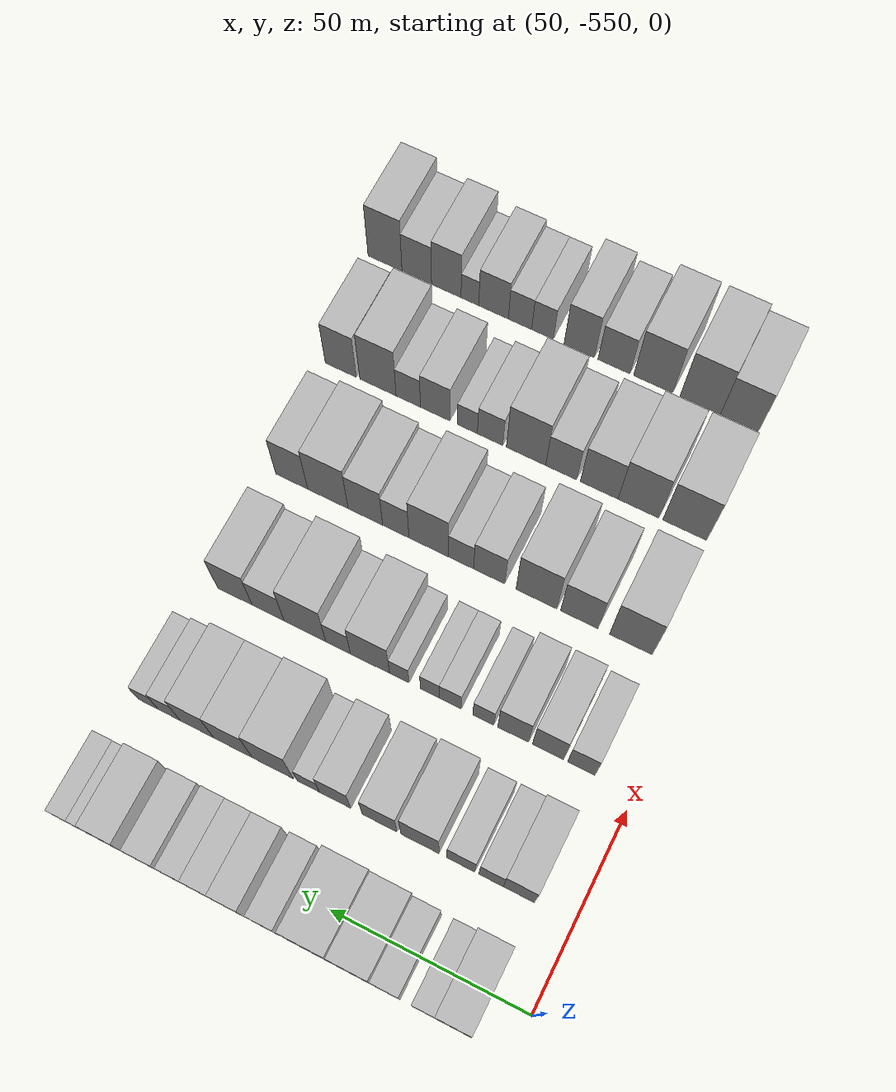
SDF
<sdf version="1.6">
 <world name="default">
  <model name="building_1">
   <static>1</static>
   <pose>50.0000 -535.6946 0 0.000000 0.000000 0.000000</pose>
   <link name="link">
    <pose>0 0 10.50 0 0 0</pose>
    <collision name="collision"><geometry><box><size>20.0000 8.6108 21.0000</size></box></geometry></collision>
    <visual name="visual">
     <cast_shadows>0</cast_shadows>
     <geometry><box><size>20.0000 8.6108 21.0000</size></box></geometry>
     <material>
      <script>
       <uri>model://HANNAS_wall/materials/scripts</uri>
       <uri>model://HANNAS_wall/materials/textures</uri>
       <name>vrc/HANNAS_wall</name>
      </script>
     </material>
    </visual>
   </link>
  </model>
  <model name="building_2">
   <static>1</static>
   <pose>50.0000 -528.5945 0 0.000000 0.000000 0.000000</pose>
   <link name="link">
    <pose>0 0 6.00 0 0 0</pose>
    <collision name="collision"><geometry><box><size>20.0000 5.5894 12.0000</size></box></geometry></collision>
    <visual name="visual">
     <cast_shadows>0</cast_shadows>
     <geometry><box><size>20.0000 5.5894 12.0000</size></box></geometry>
     <material>
      <script>
       <uri>model://HANNAS_wall/materials/scripts</uri>
       <uri>model://HANNAS_wall/materials/textures</uri>
       <name>vrc/HANNAS_wall</name>
      </script>
     </material>
    </visual>
   </link>
  </model>
  <model name="building_3">
   <static>1</static>
   <pose>50.0000 -519.3449 0 0.000000 0.000000 0.000000</pose>
   <link name="link">
    <pose>0 0 7.50 0 0 0</pose>
    <collision name="collision"><geometry><box><size>20.0000 6.9099 15.0000</size></box></geometry></collision>
    <visual name="visual">
     <cast_shadows>0</cast_shadows>
     <geometry><box><size>20.0000 6.9099 15.0000</size></box></geometry>
     <material>
      <script>
       <uri>model://HANNAS_wall/materials/scripts</uri>
       <uri>model://HANNAS_wall/materials/textures</uri>
       <name>vrc/HANNAS_wall</name>
      </script>
     </material>
    </visual>
   </link>
  </model>
  <model name="building_4">
   <static>1</static>
   <pose>50.0000 -510.8784 0 0.000000 0.000000 0.000000</pose>
   <link name="link">
    <pose>0 0 10.50 0 0 0</pose>
    <collision name="collision"><geometry><box><size>20.0000 10.0230 21.0000</size></box></geometry></collision>
    <visual name="visual">
     <cast_shadows>0</cast_shadows>
     <geometry><box><size>20.0000 10.0230 21.0000</size></box></geometry>
     <material>
      <script>
       <uri>model://HANNAS_wall/materials/scripts</uri>
       <uri>model://HANNAS_wall/materials/textures</uri>
       <name>vrc/HANNAS_wall</name>
      </script>
     </material>
    </visual>
   </link>
  </model>
  <model name="building_5">
   <static>1</static>
   <pose>50.0000 -500.2681 0 0.000000 0.000000 0.000000</pose>
   <link name="link">
    <pose>0 0 12.00 0 0 0</pose>
    <collision name="collision"><geometry><box><size>20.0000 11.1976 24.0000</size></box></geometry></collision>
    <visual name="visual">
     <cast_shadows>0</cast_shadows>
     <geometry><box><size>20.0000 11.1976 24.0000</size></box></geometry>
     <material>
      <script>
       <uri>model://HANNAS_wall/materials/scripts</uri>
       <uri>model://HANNAS_wall/materials/textures</uri>
       <name>vrc/HANNAS_wall</name>
      </script>
     </material>
    </visual>
   </link>
  </model>
  <model name="building_6">
   <static>1</static>
   <pose>50.0000 -489.2908 0 0.000000 0.000000 0.000000</pose>
   <link name="link">
    <pose>0 0 7.50 0 0 0</pose>
    <collision name="collision"><geometry><box><size>20.0000 6.7569 15.0000</size></box></geometry></collision>
    <visual name="visual">
     <cast_shadows>0</cast_shadows>
     <geometry><box><size>20.0000 6.7569 15.0000</size></box></geometry>
     <material>
      <script>
       <uri>model://HANNAS_wall/materials/scripts</uri>
       <uri>model://HANNAS_wall/materials/textures</uri>
       <name>vrc/HANNAS_wall</name>
      </script>
     </material>
    </visual>
   </link>
  </model>
  <model name="building_7">
   <static>1</static>
   <pose>50.0000 -480.1677 0 0.000000 0.000000 0.000000</pose>
   <link name="link">
    <pose>0 0 7.50 0 0 0</pose>
    <collision name="collision"><geometry><box><size>20.0000 7.4892 15.0000</size></box></geometry></collision>
    <visual name="visual">
     <cast_shadows>0</cast_shadows>
     <geometry><box><size>20.0000 7.4892 15.0000</size></box></geometry>
     <material>
      <script>
       <uri>model://HANNAS_wall/materials/scripts</uri>
       <uri>model://HANNAS_wall/materials/textures</uri>
       <name>vrc/HANNAS_wall</name>
      </script>
     </material>
    </visual>
   </link>
  </model>
  <model name="building_8">
   <static>1</static>
   <pose>50.0000 -473.1061 0 0.000000 0.000000 0.000000</pose>
   <link name="link">
    <pose>0 0 7.50 0 0 0</pose>
    <collision name="collision"><geometry><box><size>20.0000 6.6341 15.0000</size></box></geometry></collision>
    <visual name="visual">
     <cast_shadows>0</cast_shadows>
     <geometry><box><size>20.0000 6.6341 15.0000</size></box></geometry>
     <material>
      <script>
       <uri>model://HANNAS_wall/materials/scripts</uri>
       <uri>model://HANNAS_wall/materials/textures</uri>
       <name>vrc/HANNAS_wall</name>
      </script>
     </material>
    </visual>
   </link>
  </model>
  <model name="building_9">
   <static>1</static>
   <pose>50.0000 -466.7737 0 0.000000 0.000000 0.000000</pose>
   <link name="link">
    <pose>0 0 7.50 0 0 0</pose>
    <collision name="collision"><geometry><box><size>20.0000 6.0306 15.0000</size></box></geometry></collision>
    <visual name="visual">
     <cast_shadows>0</cast_shadows>
     <geometry><box><size>20.0000 6.0306 15.0000</size></box></geometry>
     <material>
      <script>
       <uri>model://HANNAS_wall/materials/scripts</uri>
       <uri>model://HANNAS_wall/materials/textures</uri>
       <name>vrc/HANNAS_wall</name>
      </script>
     </material>
    </visual>
   </link>
  </model>
  <model name="building_10">
   <static>1</static>
   <pose>50.0000 -459.0186 0 0.000000 0.000000 0.000000</pose>
   <link name="link">
    <pose>0 0 7.50 0 0 0</pose>
    <collision name="collision"><geometry><box><size>20.0000 7.4796 15.0000</size></box></geometry></collision>
    <visual name="visual">
     <cast_shadows>0</cast_shadows>
     <geometry><box><size>20.0000 7.4796 15.0000</size></box></geometry>
     <material>
      <script>
       <uri>model://HANNAS_wall/materials/scripts</uri>
       <uri>model://HANNAS_wall/materials/textures</uri>
       <name>vrc/HANNAS_wall</name>
      </script>
     </material>
    </visual>
   </link>
  </model>
  <model name="building_11">
   <static>1</static>
   <pose>50.0000 -449.9481 0 0.000000 0.000000 0.000000</pose>
   <link name="link">
    <pose>0 0 10.50 0 0 0</pose>
    <collision name="collision"><geometry><box><size>20.0000 8.6615 21.0000</size></box></geometry></collision>
    <visual name="visual">
     <cast_shadows>0</cast_shadows>
     <geometry><box><size>20.0000 8.6615 21.0000</size></box></geometry>
     <material>
      <script>
       <uri>model://HANNAS_wall/materials/scripts</uri>
       <uri>model://HANNAS_wall/materials/textures</uri>
       <name>vrc/HANNAS_wall</name>
      </script>
     </material>
    </visual>
   </link>
  </model>
  <model name="building_12">
   <static>1</static>
   <pose>50.0000 -443.0723 0 0.000000 0.000000 0.000000</pose>
   <link name="link">
    <pose>0 0 6.00 0 0 0</pose>
    <collision name="collision"><geometry><box><size>20.0000 5.0902 12.0000</size></box></geometry></collision>
    <visual name="visual">
     <cast_shadows>0</cast_shadows>
     <geometry><box><size>20.0000 5.0902 12.0000</size></box></geometry>
     <material>
      <script>
       <uri>model://HANNAS_wall/materials/scripts</uri>
       <uri>model://HANNAS_wall/materials/textures</uri>
       <name>vrc/HANNAS_wall</name>
      </script>
     </material>
    </visual>
   </link>
  </model>
  <model name="building_13">
   <static>1</static>
   <pose>50.0000 -437.9258 0 0.000000 0.000000 0.000000</pose>
   <link name="link">
    <pose>0 0 6.00 0 0 0</pose>
    <collision name="collision"><geometry><box><size>20.0000 5.2027 12.0000</size></box></geometry></collision>
    <visual name="visual">
     <cast_shadows>0</cast_shadows>
     <geometry><box><size>20.0000 5.2027 12.0000</size></box></geometry>
     <material>
      <script>
       <uri>model://HANNAS_wall/materials/scripts</uri>
       <uri>model://HANNAS_wall/materials/textures</uri>
       <name>vrc/HANNAS_wall</name>
      </script>
     </material>
    </visual>
   </link>
  </model>
  <model name="building_122">
   <static>1</static>
   <pose>82.0000 -536.1418 0 0.000000 0.000000 0.000000</pose>
   <link name="link">
    <pose>0 0 9.00 0 0 0</pose>
    <collision name="collision"><geometry><box><size>20.0000 7.7164 18.0000</size></box></geometry></collision>
    <visual name="visual">
     <cast_shadows>0</cast_shadows>
     <geometry><box><size>20.0000 7.7164 18.0000</size></box></geometry>
     <material>
      <script>
       <uri>model://HANNAS_wall/materials/scripts</uri>
       <uri>model://HANNAS_wall/materials/textures</uri>
       <name>vrc/HANNAS_wall</name>
      </script>
     </material>
    </visual>
   </link>
  </model>
  <model name="building_123">
   <static>1</static>
   <pose>82.0000 -529.2251 0 0.000000 0.000000 0.000000</pose>
   <link name="link">
    <pose>0 0 7.50 0 0 0</pose>
    <collision name="collision"><geometry><box><size>20.0000 6.1171 15.0000</size></box></geometry></collision>
    <visual name="visual">
     <cast_shadows>0</cast_shadows>
     <geometry><box><size>20.0000 6.1171 15.0000</size></box></geometry>
     <material>
      <script>
       <uri>model://HANNAS_wall/materials/scripts</uri>
       <uri>model://HANNAS_wall/materials/textures</uri>
       <name>vrc/HANNAS_wall</name>
      </script>
     </material>
    </visual>
   </link>
  </model>
  <model name="building_124">
   <static>1</static>
   <pose>82.0000 -521.6427 0 0.000000 0.000000 0.000000</pose>
   <link name="link">
    <pose>0 0 7.50 0 0 0</pose>
    <collision name="collision"><geometry><box><size>20.0000 7.0477 15.0000</size></box></geometry></collision>
    <visual name="visual">
     <cast_shadows>0</cast_shadows>
     <geometry><box><size>20.0000 7.0477 15.0000</size></box></geometry>
     <material>
      <script>
       <uri>model://HANNAS_wall/materials/scripts</uri>
       <uri>model://HANNAS_wall/materials/textures</uri>
       <name>vrc/HANNAS_wall</name>
      </script>
     </material>
    </visual>
   </link>
  </model>
  <model name="building_125">
   <static>1</static>
   <pose>82.0000 -511.2920 0 0.000000 0.000000 0.000000</pose>
   <link name="link">
    <pose>0 0 10.50 0 0 0</pose>
    <collision name="collision"><geometry><box><size>20.0000 9.6538 21.0000</size></box></geometry></collision>
    <visual name="visual">
     <cast_shadows>0</cast_shadows>
     <geometry><box><size>20.0000 9.6538 21.0000</size></box></geometry>
     <material>
      <script>
       <uri>model://HANNAS_wall/materials/scripts</uri>
       <uri>model://HANNAS_wall/materials/textures</uri>
       <name>vrc/HANNAS_wall</name>
      </script>
     </material>
    </visual>
   </link>
  </model>
  <model name="building_126">
   <static>1</static>
   <pose>82.0000 -501.0343 0 0.000000 0.000000 0.000000</pose>
   <link name="link">
    <pose>0 0 9.00 0 0 0</pose>
    <collision name="collision"><geometry><box><size>20.0000 8.8615 18.0000</size></box></geometry></collision>
    <visual name="visual">
     <cast_shadows>0</cast_shadows>
     <geometry><box><size>20.0000 8.8615 18.0000</size></box></geometry>
     <material>
      <script>
       <uri>model://HANNAS_wall/materials/scripts</uri>
       <uri>model://HANNAS_wall/materials/textures</uri>
       <name>vrc/HANNAS_wall</name>
      </script>
     </material>
    </visual>
   </link>
  </model>
  <model name="building_127">
   <static>1</static>
   <pose>82.0000 -489.5662 0 0.000000 0.000000 0.000000</pose>
   <link name="link">
    <pose>0 0 9.00 0 0 0</pose>
    <collision name="collision"><geometry><box><size>20.0000 8.0747 18.0000</size></box></geometry></collision>
    <visual name="visual">
     <cast_shadows>0</cast_shadows>
     <geometry><box><size>20.0000 8.0747 18.0000</size></box></geometry>
     <material>
      <script>
       <uri>model://HANNAS_wall/materials/scripts</uri>
       <uri>model://HANNAS_wall/materials/textures</uri>
       <name>vrc/HANNAS_wall</name>
      </script>
     </material>
    </visual>
   </link>
  </model>
  <model name="building_128">
   <static>1</static>
   <pose>82.0000 -482.6268 0 0.000000 0.000000 0.000000</pose>
   <link name="link">
    <pose>0 0 6.00 0 0 0</pose>
    <collision name="collision"><geometry><box><size>20.0000 5.8041 12.0000</size></box></geometry></collision>
    <visual name="visual">
     <cast_shadows>0</cast_shadows>
     <geometry><box><size>20.0000 5.8041 12.0000</size></box></geometry>
     <material>
      <script>
       <uri>model://HANNAS_wall/materials/scripts</uri>
       <uri>model://HANNAS_wall/materials/textures</uri>
       <name>vrc/HANNAS_wall</name>
      </script>
     </material>
    </visual>
   </link>
  </model>
  <model name="building_129">
   <static>1</static>
   <pose>82.0000 -473.3147 0 0.000000 0.000000 0.000000</pose>
   <link name="link">
    <pose>0 0 12.00 0 0 0</pose>
    <collision name="collision"><geometry><box><size>20.0000 10.8201 24.0000</size></box></geometry></collision>
    <visual name="visual">
     <cast_shadows>0</cast_shadows>
     <geometry><box><size>20.0000 10.8201 24.0000</size></box></geometry>
     <material>
      <script>
       <uri>model://HANNAS_wall/materials/scripts</uri>
       <uri>model://HANNAS_wall/materials/textures</uri>
       <name>vrc/HANNAS_wall</name>
      </script>
     </material>
    </visual>
   </link>
  </model>
  <model name="building_130">
   <static>1</static>
   <pose>82.0000 -462.8361 0 0.000000 0.000000 0.000000</pose>
   <link name="link">
    <pose>0 0 10.50 0 0 0</pose>
    <collision name="collision"><geometry><box><size>20.0000 10.1370 21.0000</size></box></geometry></collision>
    <visual name="visual">
     <cast_shadows>0</cast_shadows>
     <geometry><box><size>20.0000 10.1370 21.0000</size></box></geometry>
     <material>
      <script>
       <uri>model://HANNAS_wall/materials/scripts</uri>
       <uri>model://HANNAS_wall/materials/textures</uri>
       <name>vrc/HANNAS_wall</name>
      </script>
     </material>
    </visual>
   </link>
  </model>
  <model name="building_131">
   <static>1</static>
   <pose>82.0000 -453.2930 0 0.000000 0.000000 0.000000</pose>
   <link name="link">
    <pose>0 0 10.50 0 0 0</pose>
    <collision name="collision"><geometry><box><size>20.0000 8.9493 21.0000</size></box></geometry></collision>
    <visual name="visual">
     <cast_shadows>0</cast_shadows>
     <geometry><box><size>20.0000 8.9493 21.0000</size></box></geometry>
     <material>
      <script>
       <uri>model://HANNAS_wall/materials/scripts</uri>
       <uri>model://HANNAS_wall/materials/textures</uri>
       <name>vrc/HANNAS_wall</name>
      </script>
     </material>
    </visual>
   </link>
  </model>
  <model name="building_132">
   <static>1</static>
   <pose>82.0000 -445.8079 0 0.000000 0.000000 0.000000</pose>
   <link name="link">
    <pose>0 0 7.50 0 0 0</pose>
    <collision name="collision"><geometry><box><size>20.0000 6.0209 15.0000</size></box></geometry></collision>
    <visual name="visual">
     <cast_shadows>0</cast_shadows>
     <geometry><box><size>20.0000 6.0209 15.0000</size></box></geometry>
     <material>
      <script>
       <uri>model://HANNAS_wall/materials/scripts</uri>
       <uri>model://HANNAS_wall/materials/textures</uri>
       <name>vrc/HANNAS_wall</name>
      </script>
     </material>
    </visual>
   </link>
  </model>
  <model name="building_133">
   <static>1</static>
   <pose>82.0000 -440.1030 0 0.000000 0.000000 0.000000</pose>
   <link name="link">
    <pose>0 0 6.00 0 0 0</pose>
    <collision name="collision"><geometry><box><size>20.0000 5.3889 12.0000</size></box></geometry></collision>
    <visual name="visual">
     <cast_shadows>0</cast_shadows>
     <geometry><box><size>20.0000 5.3889 12.0000</size></box></geometry>
     <material>
      <script>
       <uri>model://HANNAS_wall/materials/scripts</uri>
       <uri>model://HANNAS_wall/materials/textures</uri>
       <name>vrc/HANNAS_wall</name>
      </script>
     </material>
    </visual>
   </link>
  </model>
  <model name="building_244">
   <static>1</static>
   <pose>114.0000 -536.5193 0 0.000000 0.000000 0.000000</pose>
   <link name="link">
    <pose>0 0 7.50 0 0 0</pose>
    <collision name="collision"><geometry><box><size>20.0000 6.9614 15.0000</size></box></geometry></collision>
    <visual name="visual">
     <cast_shadows>0</cast_shadows>
     <geometry><box><size>20.0000 6.9614 15.0000</size></box></geometry>
     <material>
      <script>
       <uri>model://HANNAS_wall/materials/scripts</uri>
       <uri>model://HANNAS_wall/materials/textures</uri>
       <name>vrc/HANNAS_wall</name>
      </script>
     </material>
    </visual>
   </link>
  </model>
  <model name="building_245">
   <static>1</static>
   <pose>114.0000 -528.0449 0 0.000000 0.000000 0.000000</pose>
   <link name="link">
    <pose>0 0 9.00 0 0 0</pose>
    <collision name="collision"><geometry><box><size>20.0000 7.9874 18.0000</size></box></geometry></collision>
    <visual name="visual">
     <cast_shadows>0</cast_shadows>
     <geometry><box><size>20.0000 7.9874 18.0000</size></box></geometry>
     <material>
      <script>
       <uri>model://HANNAS_wall/materials/scripts</uri>
       <uri>model://HANNAS_wall/materials/textures</uri>
       <name>vrc/HANNAS_wall</name>
      </script>
     </material>
    </visual>
   </link>
  </model>
  <model name="building_246">
   <static>1</static>
   <pose>114.0000 -519.0947 0 0.000000 0.000000 0.000000</pose>
   <link name="link">
    <pose>0 0 9.00 0 0 0</pose>
    <collision name="collision"><geometry><box><size>20.0000 7.9131 18.0000</size></box></geometry></collision>
    <visual name="visual">
     <cast_shadows>0</cast_shadows>
     <geometry><box><size>20.0000 7.9131 18.0000</size></box></geometry>
     <material>
      <script>
       <uri>model://HANNAS_wall/materials/scripts</uri>
       <uri>model://HANNAS_wall/materials/textures</uri>
       <name>vrc/HANNAS_wall</name>
      </script>
     </material>
    </visual>
   </link>
  </model>
  <model name="building_247">
   <static>1</static>
   <pose>114.0000 -511.4065 0 0.000000 0.000000 0.000000</pose>
   <link name="link">
    <pose>0 0 6.00 0 0 0</pose>
    <collision name="collision"><geometry><box><size>20.0000 5.4634 12.0000</size></box></geometry></collision>
    <visual name="visual">
     <cast_shadows>0</cast_shadows>
     <geometry><box><size>20.0000 5.4634 12.0000</size></box></geometry>
     <material>
      <script>
       <uri>model://HANNAS_wall/materials/scripts</uri>
       <uri>model://HANNAS_wall/materials/textures</uri>
       <name>vrc/HANNAS_wall</name>
      </script>
     </material>
    </visual>
   </link>
  </model>
  <model name="building_248">
   <static>1</static>
   <pose>114.0000 -502.7991 0 0.000000 0.000000 0.000000</pose>
   <link name="link">
    <pose>0 0 6.00 0 0 0</pose>
    <collision name="collision"><geometry><box><size>20.0000 5.7513 12.0000</size></box></geometry></collision>
    <visual name="visual">
     <cast_shadows>0</cast_shadows>
     <geometry><box><size>20.0000 5.7513 12.0000</size></box></geometry>
     <material>
      <script>
       <uri>model://HANNAS_wall/materials/scripts</uri>
       <uri>model://HANNAS_wall/materials/textures</uri>
       <name>vrc/HANNAS_wall</name>
      </script>
     </material>
    </visual>
   </link>
  </model>
  <model name="building_249">
   <static>1</static>
   <pose>114.0000 -497.4476 0 0.000000 0.000000 0.000000</pose>
   <link name="link">
    <pose>0 0 6.00 0 0 0</pose>
    <collision name="collision"><geometry><box><size>20.0000 4.9518 12.0000</size></box></geometry></collision>
    <visual name="visual">
     <cast_shadows>0</cast_shadows>
     <geometry><box><size>20.0000 4.9518 12.0000</size></box></geometry>
     <material>
      <script>
       <uri>model://HANNAS_wall/materials/scripts</uri>
       <uri>model://HANNAS_wall/materials/textures</uri>
       <name>vrc/HANNAS_wall</name>
      </script>
     </material>
    </visual>
   </link>
  </model>
  <model name="building_250">
   <static>1</static>
   <pose>114.0000 -489.4123 0 0.000000 0.000000 0.000000</pose>
   <link name="link">
    <pose>0 0 6.00 0 0 0</pose>
    <collision name="collision"><geometry><box><size>20.0000 5.1188 12.0000</size></box></geometry></collision>
    <visual name="visual">
     <cast_shadows>0</cast_shadows>
     <geometry><box><size>20.0000 5.1188 12.0000</size></box></geometry>
     <material>
      <script>
       <uri>model://HANNAS_wall/materials/scripts</uri>
       <uri>model://HANNAS_wall/materials/textures</uri>
       <name>vrc/HANNAS_wall</name>
      </script>
     </material>
    </visual>
   </link>
  </model>
  <model name="building_251">
   <static>1</static>
   <pose>114.0000 -481.6584 0 0.000000 0.000000 0.000000</pose>
   <link name="link">
    <pose>0 0 10.50 0 0 0</pose>
    <collision name="collision"><geometry><box><size>20.0000 10.3890 21.0000</size></box></geometry></collision>
    <visual name="visual">
     <cast_shadows>0</cast_shadows>
     <geometry><box><size>20.0000 10.3890 21.0000</size></box></geometry>
     <material>
      <script>
       <uri>model://HANNAS_wall/materials/scripts</uri>
       <uri>model://HANNAS_wall/materials/textures</uri>
       <name>vrc/HANNAS_wall</name>
      </script>
     </material>
    </visual>
   </link>
  </model>
  <model name="building_252">
   <static>1</static>
   <pose>114.0000 -473.1656 0 0.000000 0.000000 0.000000</pose>
   <link name="link">
    <pose>0 0 7.50 0 0 0</pose>
    <collision name="collision"><geometry><box><size>20.0000 6.5965 15.0000</size></box></geometry></collision>
    <visual name="visual">
     <cast_shadows>0</cast_shadows>
     <geometry><box><size>20.0000 6.5965 15.0000</size></box></geometry>
     <material>
      <script>
       <uri>model://HANNAS_wall/materials/scripts</uri>
       <uri>model://HANNAS_wall/materials/textures</uri>
       <name>vrc/HANNAS_wall</name>
      </script>
     </material>
    </visual>
   </link>
  </model>
  <model name="building_253">
   <static>1</static>
   <pose>114.0000 -464.2509 0 0.000000 0.000000 0.000000</pose>
   <link name="link">
    <pose>0 0 12.00 0 0 0</pose>
    <collision name="collision"><geometry><box><size>20.0000 11.2329 24.0000</size></box></geometry></collision>
    <visual name="visual">
     <cast_shadows>0</cast_shadows>
     <geometry><box><size>20.0000 11.2329 24.0000</size></box></geometry>
     <material>
      <script>
       <uri>model://HANNAS_wall/materials/scripts</uri>
       <uri>model://HANNAS_wall/materials/textures</uri>
       <name>vrc/HANNAS_wall</name>
      </script>
     </material>
    </visual>
   </link>
  </model>
  <model name="building_254">
   <static>1</static>
   <pose>114.0000 -454.2753 0 0.000000 0.000000 0.000000</pose>
   <link name="link">
    <pose>0 0 9.00 0 0 0</pose>
    <collision name="collision"><geometry><box><size>20.0000 8.7184 18.0000</size></box></geometry></collision>
    <visual name="visual">
     <cast_shadows>0</cast_shadows>
     <geometry><box><size>20.0000 8.7184 18.0000</size></box></geometry>
     <material>
      <script>
       <uri>model://HANNAS_wall/materials/scripts</uri>
       <uri>model://HANNAS_wall/materials/textures</uri>
       <name>vrc/HANNAS_wall</name>
      </script>
     </material>
    </visual>
   </link>
  </model>
  <model name="building_255">
   <static>1</static>
   <pose>114.0000 -445.1912 0 0.000000 0.000000 0.000000</pose>
   <link name="link">
    <pose>0 0 10.50 0 0 0</pose>
    <collision name="collision"><geometry><box><size>20.0000 9.4496 21.0000</size></box></geometry></collision>
    <visual name="visual">
     <cast_shadows>0</cast_shadows>
     <geometry><box><size>20.0000 9.4496 21.0000</size></box></geometry>
     <material>
      <script>
       <uri>model://HANNAS_wall/materials/scripts</uri>
       <uri>model://HANNAS_wall/materials/textures</uri>
       <name>vrc/HANNAS_wall</name>
      </script>
     </material>
    </visual>
   </link>
  </model>
  <model name="building_363">
   <static>1</static>
   <pose>146.0000 -534.4470 0 0.000000 0.000000 0.000000</pose>
   <link name="link">
    <pose>0 0 12.00 0 0 0</pose>
    <collision name="collision"><geometry><box><size>20.0000 11.1061 24.0000</size></box></geometry></collision>
    <visual name="visual">
     <cast_shadows>0</cast_shadows>
     <geometry><box><size>20.0000 11.1061 24.0000</size></box></geometry>
     <material>
      <script>
       <uri>model://HANNAS_wall/materials/scripts</uri>
       <uri>model://HANNAS_wall/materials/textures</uri>
       <name>vrc/HANNAS_wall</name>
      </script>
     </material>
    </visual>
   </link>
  </model>
  <model name="building_364">
   <static>1</static>
   <pose>146.0000 -520.9766 0 0.000000 0.000000 0.000000</pose>
   <link name="link">
    <pose>0 0 10.50 0 0 0</pose>
    <collision name="collision"><geometry><box><size>20.0000 9.8348 21.0000</size></box></geometry></collision>
    <visual name="visual">
     <cast_shadows>0</cast_shadows>
     <geometry><box><size>20.0000 9.8348 21.0000</size></box></geometry>
     <material>
      <script>
       <uri>model://HANNAS_wall/materials/scripts</uri>
       <uri>model://HANNAS_wall/materials/textures</uri>
       <name>vrc/HANNAS_wall</name>
      </script>
     </material>
    </visual>
   </link>
  </model>
  <model name="building_365">
   <static>1</static>
   <pose>146.0000 -509.6592 0 0.000000 0.000000 0.000000</pose>
   <link name="link">
    <pose>0 0 12.00 0 0 0</pose>
    <collision name="collision"><geometry><box><size>20.0000 10.8000 24.0000</size></box></geometry></collision>
    <visual name="visual">
     <cast_shadows>0</cast_shadows>
     <geometry><box><size>20.0000 10.8000 24.0000</size></box></geometry>
     <material>
      <script>
       <uri>model://HANNAS_wall/materials/scripts</uri>
       <uri>model://HANNAS_wall/materials/textures</uri>
       <name>vrc/HANNAS_wall</name>
      </script>
     </material>
    </visual>
   </link>
  </model>
  <model name="building_366">
   <static>1</static>
   <pose>146.0000 -497.0833 0 0.000000 0.000000 0.000000</pose>
   <link name="link">
    <pose>0 0 9.00 0 0 0</pose>
    <collision name="collision"><geometry><box><size>20.0000 8.3519 18.0000</size></box></geometry></collision>
    <visual name="visual">
     <cast_shadows>0</cast_shadows>
     <geometry><box><size>20.0000 8.3519 18.0000</size></box></geometry>
     <material>
      <script>
       <uri>model://HANNAS_wall/materials/scripts</uri>
       <uri>model://HANNAS_wall/materials/textures</uri>
       <name>vrc/HANNAS_wall</name>
      </script>
     </material>
    </visual>
   </link>
  </model>
  <model name="building_367">
   <static>1</static>
   <pose>146.0000 -489.5125 0 0.000000 0.000000 0.000000</pose>
   <link name="link">
    <pose>0 0 7.50 0 0 0</pose>
    <collision name="collision"><geometry><box><size>20.0000 6.7896 15.0000</size></box></geometry></collision>
    <visual name="visual">
     <cast_shadows>0</cast_shadows>
     <geometry><box><size>20.0000 6.7896 15.0000</size></box></geometry>
     <material>
      <script>
       <uri>model://HANNAS_wall/materials/scripts</uri>
       <uri>model://HANNAS_wall/materials/textures</uri>
       <name>vrc/HANNAS_wall</name>
      </script>
     </material>
    </visual>
   </link>
  </model>
  <model name="building_368">
   <static>1</static>
   <pose>146.0000 -480.7797 0 0.000000 0.000000 0.000000</pose>
   <link name="link">
    <pose>0 0 12.00 0 0 0</pose>
    <collision name="collision"><geometry><box><size>20.0000 10.6761 24.0000</size></box></geometry></collision>
    <visual name="visual">
     <cast_shadows>0</cast_shadows>
     <geometry><box><size>20.0000 10.6761 24.0000</size></box></geometry>
     <material>
      <script>
       <uri>model://HANNAS_wall/materials/scripts</uri>
       <uri>model://HANNAS_wall/materials/textures</uri>
       <name>vrc/HANNAS_wall</name>
      </script>
     </material>
    </visual>
   </link>
  </model>
  <model name="building_369">
   <static>1</static>
   <pose>146.0000 -471.8409 0 0.000000 0.000000 0.000000</pose>
   <link name="link">
    <pose>0 0 9.00 0 0 0</pose>
    <collision name="collision"><geometry><box><size>20.0000 7.2016 18.0000</size></box></geometry></collision>
    <visual name="visual">
     <cast_shadows>0</cast_shadows>
     <geometry><box><size>20.0000 7.2016 18.0000</size></box></geometry>
     <material>
      <script>
       <uri>model://HANNAS_wall/materials/scripts</uri>
       <uri>model://HANNAS_wall/materials/textures</uri>
       <name>vrc/HANNAS_wall</name>
      </script>
     </material>
    </visual>
   </link>
  </model>
  <model name="building_370">
   <static>1</static>
   <pose>146.0000 -463.5042 0 0.000000 0.000000 0.000000</pose>
   <link name="link">
    <pose>0 0 10.50 0 0 0</pose>
    <collision name="collision"><geometry><box><size>20.0000 9.4718 21.0000</size></box></geometry></collision>
    <visual name="visual">
     <cast_shadows>0</cast_shadows>
     <geometry><box><size>20.0000 9.4718 21.0000</size></box></geometry>
     <material>
      <script>
       <uri>model://HANNAS_wall/materials/scripts</uri>
       <uri>model://HANNAS_wall/materials/textures</uri>
       <name>vrc/HANNAS_wall</name>
      </script>
     </material>
    </visual>
   </link>
  </model>
  <model name="building_371">
   <static>1</static>
   <pose>146.0000 -453.1589 0 0.000000 0.000000 0.000000</pose>
   <link name="link">
    <pose>0 0 12.00 0 0 0</pose>
    <collision name="collision"><geometry><box><size>20.0000 11.2188 24.0000</size></box></geometry></collision>
    <visual name="visual">
     <cast_shadows>0</cast_shadows>
     <geometry><box><size>20.0000 11.2188 24.0000</size></box></geometry>
     <material>
      <script>
       <uri>model://HANNAS_wall/materials/scripts</uri>
       <uri>model://HANNAS_wall/materials/textures</uri>
       <name>vrc/HANNAS_wall</name>
      </script>
     </material>
    </visual>
   </link>
  </model>
  <model name="building_372">
   <static>1</static>
   <pose>146.0000 -443.0999 0 0.000000 0.000000 0.000000</pose>
   <link name="link">
    <pose>0 0 10.50 0 0 0</pose>
    <collision name="collision"><geometry><box><size>20.0000 8.8992 21.0000</size></box></geometry></collision>
    <visual name="visual">
     <cast_shadows>0</cast_shadows>
     <geometry><box><size>20.0000 8.8992 21.0000</size></box></geometry>
     <material>
      <script>
       <uri>model://HANNAS_wall/materials/scripts</uri>
       <uri>model://HANNAS_wall/materials/textures</uri>
       <name>vrc/HANNAS_wall</name>
      </script>
     </material>
    </visual>
   </link>
  </model>
  <model name="building_479">
   <static>1</static>
   <pose>178.0000 -534.1759 0 0.000000 0.000000 0.000000</pose>
   <link name="link">
    <pose>0 0 12.00 0 0 0</pose>
    <collision name="collision"><geometry><box><size>20.0000 11.6481 24.0000</size></box></geometry></collision>
    <visual name="visual">
     <cast_shadows>0</cast_shadows>
     <geometry><box><size>20.0000 11.6481 24.0000</size></box></geometry>
     <material>
      <script>
       <uri>model://HANNAS_wall/materials/scripts</uri>
       <uri>model://HANNAS_wall/materials/textures</uri>
       <name>vrc/HANNAS_wall</name>
      </script>
     </material>
    </visual>
   </link>
  </model>
  <model name="building_480">
   <static>1</static>
   <pose>178.0000 -521.8917 0 0.000000 0.000000 0.000000</pose>
   <link name="link">
    <pose>0 0 12.00 0 0 0</pose>
    <collision name="collision"><geometry><box><size>20.0000 10.9204 24.0000</size></box></geometry></collision>
    <visual name="visual">
     <cast_shadows>0</cast_shadows>
     <geometry><box><size>20.0000 10.9204 24.0000</size></box></geometry>
     <material>
      <script>
       <uri>model://HANNAS_wall/materials/scripts</uri>
       <uri>model://HANNAS_wall/materials/textures</uri>
       <name>vrc/HANNAS_wall</name>
      </script>
     </material>
    </visual>
   </link>
  </model>
  <model name="building_481">
   <static>1</static>
   <pose>178.0000 -511.3293 0 0.000000 0.000000 0.000000</pose>
   <link name="link">
    <pose>0 0 10.50 0 0 0</pose>
    <collision name="collision"><geometry><box><size>20.0000 10.2043 21.0000</size></box></geometry></collision>
    <visual name="visual">
     <cast_shadows>0</cast_shadows>
     <geometry><box><size>20.0000 10.2043 21.0000</size></box></geometry>
     <material>
      <script>
       <uri>model://HANNAS_wall/materials/scripts</uri>
       <uri>model://HANNAS_wall/materials/textures</uri>
       <name>vrc/HANNAS_wall</name>
      </script>
     </material>
    </visual>
   </link>
  </model>
  <model name="building_482">
   <static>1</static>
   <pose>178.0000 -501.0121 0 0.000000 0.000000 0.000000</pose>
   <link name="link">
    <pose>0 0 9.00 0 0 0</pose>
    <collision name="collision"><geometry><box><size>20.0000 8.4301 18.0000</size></box></geometry></collision>
    <visual name="visual">
     <cast_shadows>0</cast_shadows>
     <geometry><box><size>20.0000 8.4301 18.0000</size></box></geometry>
     <material>
      <script>
       <uri>model://HANNAS_wall/materials/scripts</uri>
       <uri>model://HANNAS_wall/materials/textures</uri>
       <name>vrc/HANNAS_wall</name>
      </script>
     </material>
    </visual>
   </link>
  </model>
  <model name="building_483">
   <static>1</static>
   <pose>178.0000 -491.4070 0 0.000000 0.000000 0.000000</pose>
   <link name="link">
    <pose>0 0 12.00 0 0 0</pose>
    <collision name="collision"><geometry><box><size>20.0000 10.7801 24.0000</size></box></geometry></collision>
    <visual name="visual">
     <cast_shadows>0</cast_shadows>
     <geometry><box><size>20.0000 10.7801 24.0000</size></box></geometry>
     <material>
      <script>
       <uri>model://HANNAS_wall/materials/scripts</uri>
       <uri>model://HANNAS_wall/materials/textures</uri>
       <name>vrc/HANNAS_wall</name>
      </script>
     </material>
    </visual>
   </link>
  </model>
  <model name="building_484">
   <static>1</static>
   <pose>178.0000 -481.5084 0 0.000000 0.000000 0.000000</pose>
   <link name="link">
    <pose>0 0 7.50 0 0 0</pose>
    <collision name="collision"><geometry><box><size>20.0000 7.0171 15.0000</size></box></geometry></collision>
    <visual name="visual">
     <cast_shadows>0</cast_shadows>
     <geometry><box><size>20.0000 7.0171 15.0000</size></box></geometry>
     <material>
      <script>
       <uri>model://HANNAS_wall/materials/scripts</uri>
       <uri>model://HANNAS_wall/materials/textures</uri>
       <name>vrc/HANNAS_wall</name>
      </script>
     </material>
    </visual>
   </link>
  </model>
  <model name="building_485">
   <static>1</static>
   <pose>178.0000 -475.2017 0 0.000000 0.000000 0.000000</pose>
   <link name="link">
    <pose>0 0 6.00 0 0 0</pose>
    <collision name="collision"><geometry><box><size>20.0000 5.5963 12.0000</size></box></geometry></collision>
    <visual name="visual">
     <cast_shadows>0</cast_shadows>
     <geometry><box><size>20.0000 5.5963 12.0000</size></box></geometry>
     <material>
      <script>
       <uri>model://HANNAS_wall/materials/scripts</uri>
       <uri>model://HANNAS_wall/materials/textures</uri>
       <name>vrc/HANNAS_wall</name>
      </script>
     </material>
    </visual>
   </link>
  </model>
  <model name="building_486">
   <static>1</static>
   <pose>178.0000 -466.2706 0 0.000000 0.000000 0.000000</pose>
   <link name="link">
    <pose>0 0 9.00 0 0 0</pose>
    <collision name="collision"><geometry><box><size>20.0000 8.2660 18.0000</size></box></geometry></collision>
    <visual name="visual">
     <cast_shadows>0</cast_shadows>
     <geometry><box><size>20.0000 8.2660 18.0000</size></box></geometry>
     <material>
      <script>
       <uri>model://HANNAS_wall/materials/scripts</uri>
       <uri>model://HANNAS_wall/materials/textures</uri>
       <name>vrc/HANNAS_wall</name>
      </script>
     </material>
    </visual>
   </link>
  </model>
  <model name="building_487">
   <static>1</static>
   <pose>178.0000 -458.7103 0 0.000000 0.000000 0.000000</pose>
   <link name="link">
    <pose>0 0 7.50 0 0 0</pose>
    <collision name="collision"><geometry><box><size>20.0000 6.8547 15.0000</size></box></geometry></collision>
    <visual name="visual">
     <cast_shadows>0</cast_shadows>
     <geometry><box><size>20.0000 6.8547 15.0000</size></box></geometry>
     <material>
      <script>
       <uri>model://HANNAS_wall/materials/scripts</uri>
       <uri>model://HANNAS_wall/materials/textures</uri>
       <name>vrc/HANNAS_wall</name>
      </script>
     </material>
    </visual>
   </link>
  </model>
  <model name="building_488">
   <static>1</static>
   <pose>178.0000 -450.1546 0 0.000000 0.000000 0.000000</pose>
   <link name="link">
    <pose>0 0 12.00 0 0 0</pose>
    <collision name="collision"><geometry><box><size>20.0000 10.2567 24.0000</size></box></geometry></collision>
    <visual name="visual">
     <cast_shadows>0</cast_shadows>
     <geometry><box><size>20.0000 10.2567 24.0000</size></box></geometry>
     <material>
      <script>
       <uri>model://HANNAS_wall/materials/scripts</uri>
       <uri>model://HANNAS_wall/materials/textures</uri>
       <name>vrc/HANNAS_wall</name>
      </script>
     </material>
    </visual>
   </link>
  </model>
  <model name="building_489">
   <static>1</static>
   <pose>178.0000 -439.6086 0 0.000000 0.000000 0.000000</pose>
   <link name="link">
    <pose>0 0 10.50 0 0 0</pose>
    <collision name="collision"><geometry><box><size>20.0000 8.8353 21.0000</size></box></geometry></collision>
    <visual name="visual">
     <cast_shadows>0</cast_shadows>
     <geometry><box><size>20.0000 8.8353 21.0000</size></box></geometry>
     <material>
      <script>
       <uri>model://HANNAS_wall/materials/scripts</uri>
       <uri>model://HANNAS_wall/materials/textures</uri>
       <name>vrc/HANNAS_wall</name>
      </script>
     </material>
    </visual>
   </link>
  </model>
  <model name="building_592">
   <static>1</static>
   <pose>210.0000 -534.8737 0 0.000000 0.000000 0.000000</pose>
   <link name="link">
    <pose>0 0 10.50 0 0 0</pose>
    <collision name="collision"><geometry><box><size>20.0000 10.2525 21.0000</size></box></geometry></collision>
    <visual name="visual">
     <cast_shadows>0</cast_shadows>
     <geometry><box><size>20.0000 10.2525 21.0000</size></box></geometry>
     <material>
      <script>
       <uri>model://HANNAS_wall/materials/scripts</uri>
       <uri>model://HANNAS_wall/materials/textures</uri>
       <name>vrc/HANNAS_wall</name>
      </script>
     </material>
    </visual>
   </link>
  </model>
  <model name="building_593">
   <static>1</static>
   <pose>210.0000 -524.2434 0 0.000000 0.000000 0.000000</pose>
   <link name="link">
    <pose>0 0 12.00 0 0 0</pose>
    <collision name="collision"><geometry><box><size>20.0000 11.0081 24.0000</size></box></geometry></collision>
    <visual name="visual">
     <cast_shadows>0</cast_shadows>
     <geometry><box><size>20.0000 11.0081 24.0000</size></box></geometry>
     <material>
      <script>
       <uri>model://HANNAS_wall/materials/scripts</uri>
       <uri>model://HANNAS_wall/materials/textures</uri>
       <name>vrc/HANNAS_wall</name>
      </script>
     </material>
    </visual>
   </link>
  </model>
  <model name="building_594">
   <static>1</static>
   <pose>210.0000 -511.3687 0 0.000000 0.000000 0.000000</pose>
   <link name="link">
    <pose>0 0 12.00 0 0 0</pose>
    <collision name="collision"><geometry><box><size>20.0000 10.7413 24.0000</size></box></geometry></collision>
    <visual name="visual">
     <cast_shadows>0</cast_shadows>
     <geometry><box><size>20.0000 10.7413 24.0000</size></box></geometry>
     <material>
      <script>
       <uri>model://HANNAS_wall/materials/scripts</uri>
       <uri>model://HANNAS_wall/materials/textures</uri>
       <name>vrc/HANNAS_wall</name>
      </script>
     </material>
    </visual>
   </link>
  </model>
  <model name="building_595">
   <static>1</static>
   <pose>210.0000 -500.5524 0 0.000000 0.000000 0.000000</pose>
   <link name="link">
    <pose>0 0 9.00 0 0 0</pose>
    <collision name="collision"><geometry><box><size>20.0000 8.8913 18.0000</size></box></geometry></collision>
    <visual name="visual">
     <cast_shadows>0</cast_shadows>
     <geometry><box><size>20.0000 8.8913 18.0000</size></box></geometry>
     <material>
      <script>
       <uri>model://HANNAS_wall/materials/scripts</uri>
       <uri>model://HANNAS_wall/materials/textures</uri>
       <name>vrc/HANNAS_wall</name>
      </script>
     </material>
    </visual>
   </link>
  </model>
  <model name="building_596">
   <static>1</static>
   <pose>210.0000 -490.8700 0 0.000000 0.000000 0.000000</pose>
   <link name="link">
    <pose>0 0 10.50 0 0 0</pose>
    <collision name="collision"><geometry><box><size>20.0000 8.4735 21.0000</size></box></geometry></collision>
    <visual name="visual">
     <cast_shadows>0</cast_shadows>
     <geometry><box><size>20.0000 8.4735 21.0000</size></box></geometry>
     <material>
      <script>
       <uri>model://HANNAS_wall/materials/scripts</uri>
       <uri>model://HANNAS_wall/materials/textures</uri>
       <name>vrc/HANNAS_wall</name>
      </script>
     </material>
    </visual>
   </link>
  </model>
  <model name="building_597">
   <static>1</static>
   <pose>210.0000 -480.5643 0 0.000000 0.000000 0.000000</pose>
   <link name="link">
    <pose>0 0 7.50 0 0 0</pose>
    <collision name="collision"><geometry><box><size>20.0000 6.1379 15.0000</size></box></geometry></collision>
    <visual name="visual">
     <cast_shadows>0</cast_shadows>
     <geometry><box><size>20.0000 6.1379 15.0000</size></box></geometry>
     <material>
      <script>
       <uri>model://HANNAS_wall/materials/scripts</uri>
       <uri>model://HANNAS_wall/materials/textures</uri>
       <name>vrc/HANNAS_wall</name>
      </script>
     </material>
    </visual>
   </link>
  </model>
  <model name="building_598">
   <static>1</static>
   <pose>210.0000 -474.1936 0 0.000000 0.000000 0.000000</pose>
   <link name="link">
    <pose>0 0 7.50 0 0 0</pose>
    <collision name="collision"><geometry><box><size>20.0000 6.6035 15.0000</size></box></geometry></collision>
    <visual name="visual">
     <cast_shadows>0</cast_shadows>
     <geometry><box><size>20.0000 6.6035 15.0000</size></box></geometry>
     <material>
      <script>
       <uri>model://HANNAS_wall/materials/scripts</uri>
       <uri>model://HANNAS_wall/materials/textures</uri>
       <name>vrc/HANNAS_wall</name>
      </script>
     </material>
    </visual>
   </link>
  </model>
  <model name="building_599">
   <static>1</static>
   <pose>210.0000 -466.6629 0 0.000000 0.000000 0.000000</pose>
   <link name="link">
    <pose>0 0 9.00 0 0 0</pose>
    <collision name="collision"><geometry><box><size>20.0000 8.4577 18.0000</size></box></geometry></collision>
    <visual name="visual">
     <cast_shadows>0</cast_shadows>
     <geometry><box><size>20.0000 8.4577 18.0000</size></box></geometry>
     <material>
      <script>
       <uri>model://HANNAS_wall/materials/scripts</uri>
       <uri>model://HANNAS_wall/materials/textures</uri>
       <name>vrc/HANNAS_wall</name>
      </script>
     </material>
    </visual>
   </link>
  </model>
  <model name="building_600">
   <static>1</static>
   <pose>210.0000 -459.9141 0 0.000000 0.000000 0.000000</pose>
   <link name="link">
    <pose>0 0 6.00 0 0 0</pose>
    <collision name="collision"><geometry><box><size>20.0000 5.0399 12.0000</size></box></geometry></collision>
    <visual name="visual">
     <cast_shadows>0</cast_shadows>
     <geometry><box><size>20.0000 5.0399 12.0000</size></box></geometry>
     <material>
      <script>
       <uri>model://HANNAS_wall/materials/scripts</uri>
       <uri>model://HANNAS_wall/materials/textures</uri>
       <name>vrc/HANNAS_wall</name>
      </script>
     </material>
    </visual>
   </link>
  </model>
  <model name="building_601">
   <static>1</static>
   <pose>210.0000 -453.1570 0 0.000000 0.000000 0.000000</pose>
   <link name="link">
    <pose>0 0 10.50 0 0 0</pose>
    <collision name="collision"><geometry><box><size>20.0000 8.4744 21.0000</size></box></geometry></collision>
    <visual name="visual">
     <cast_shadows>0</cast_shadows>
     <geometry><box><size>20.0000 8.4744 21.0000</size></box></geometry>
     <material>
      <script>
       <uri>model://HANNAS_wall/materials/scripts</uri>
       <uri>model://HANNAS_wall/materials/textures</uri>
       <name>vrc/HANNAS_wall</name>
      </script>
     </material>
    </visual>
   </link>
  </model>
  <model name="building_602">
   <static>1</static>
   <pose>210.0000 -444.6479 0 0.000000 0.000000 0.000000</pose>
   <link name="link">
    <pose>0 0 9.00 0 0 0</pose>
    <collision name="collision"><geometry><box><size>20.0000 8.5438 18.0000</size></box></geometry></collision>
    <visual name="visual">
     <cast_shadows>0</cast_shadows>
     <geometry><box><size>20.0000 8.5438 18.0000</size></box></geometry>
     <material>
      <script>
       <uri>model://HANNAS_wall/materials/scripts</uri>
       <uri>model://HANNAS_wall/materials/textures</uri>
       <name>vrc/HANNAS_wall</name>
      </script>
     </material>
    </visual>
   </link>
  </model>
  <model name="building_603">
   <static>1</static>
   <pose>210.0000 -435.4332 0 0.000000 0.000000 0.000000</pose>
   <link name="link">
    <pose>0 0 12.00 0 0 0</pose>
    <collision name="collision"><geometry><box><size>20.0000 9.8857 24.0000</size></box></geometry></collision>
    <visual name="visual">
     <cast_shadows>0</cast_shadows>
     <geometry><box><size>20.0000 9.8857 24.0000</size></box></geometry>
     <material>
      <script>
       <uri>model://HANNAS_wall/materials/scripts</uri>
       <uri>model://HANNAS_wall/materials/textures</uri>
       <name>vrc/HANNAS_wall</name>
      </script>
     </material>
    </visual>
   </link>
  </model>
 </world>
</sdf>
